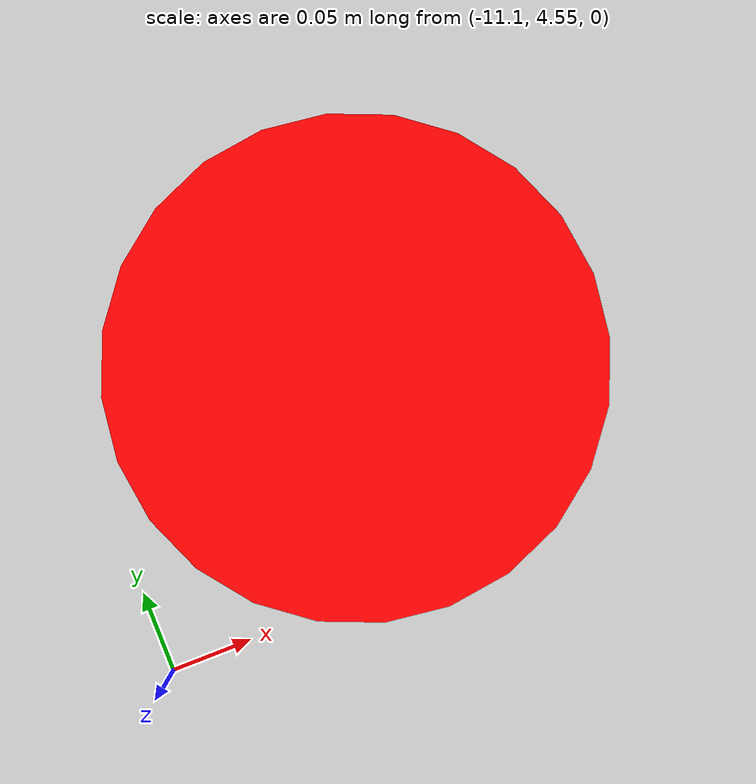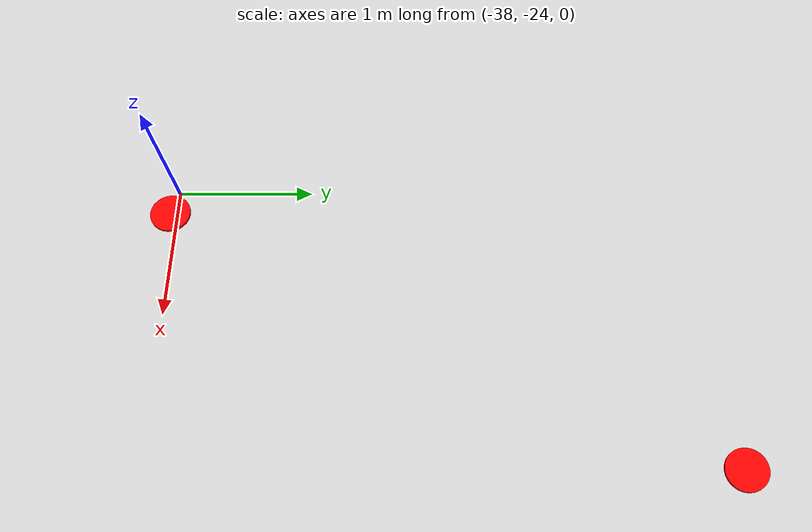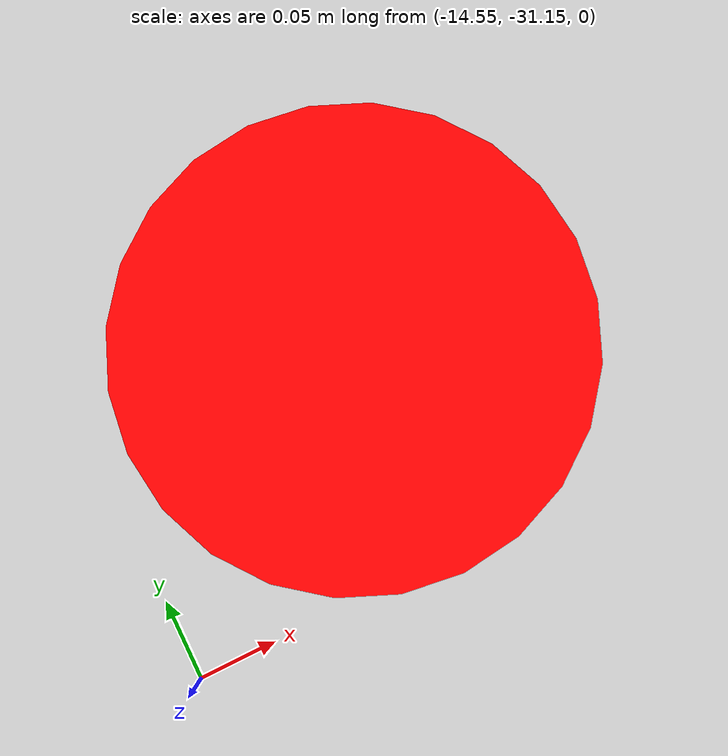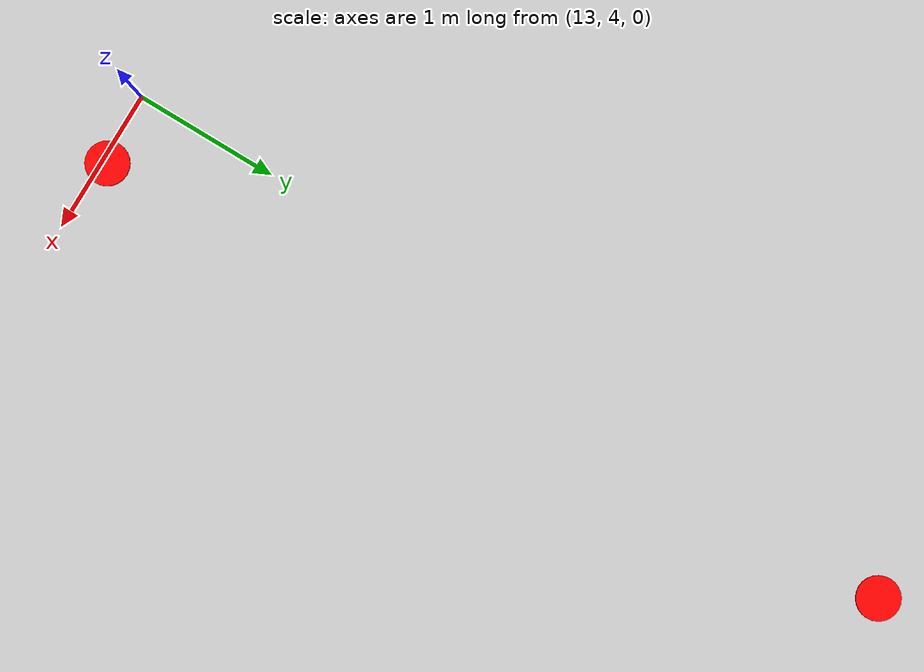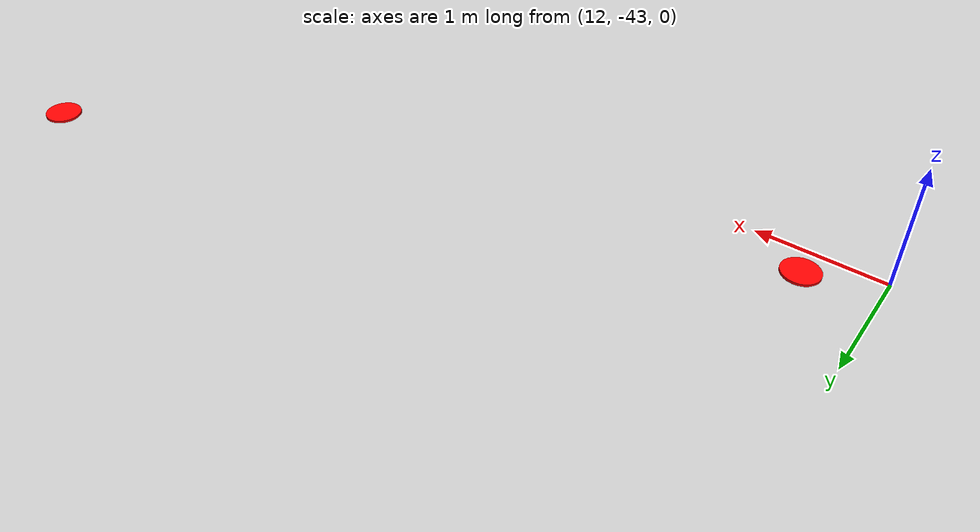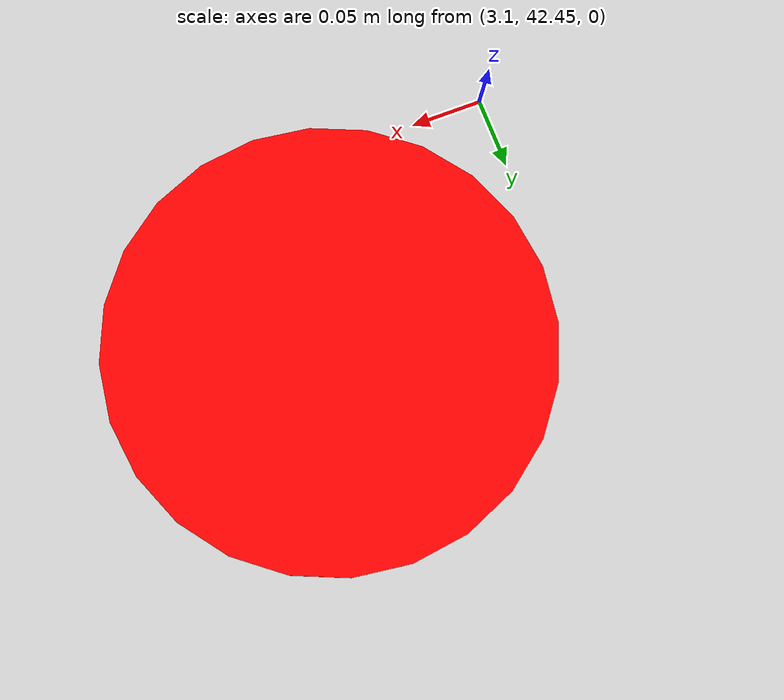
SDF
<?xml version="1.0" ?>
<sdf version="1.6">
  <world name="disc_world">

    <!-- Lighting -->
    <include>
      <uri>model://sun</uri>
    </include>

    <!-- Ground plane -->
    <include>
      <uri>model://ground_plane</uri>
    </include>

    <!-- Physics -->
    <physics type="ode">
      <real_time_update_rate>1000.0</real_time_update_rate>
      <max_step_size>0.001</max_step_size>
      <real_time_factor>1</real_time_factor>
    </physics>

    <!-- Scene -->
    <scene>
      <ambient>0.4 0.4 0.4 1</ambient>
      <background>0.7 0.7 0.7 1</background>
      <shadows>true</shadows>
    </scene>

    <!-- 25 Randomly Scattered Discs (seed=42, 100x100m area) -->

    <model name="disc_1">
      <static>true</static>
      <pose>12.55 -42.75 0.01 0 0 0</pose>
      <link name="link">
        <visual name="visual">
          <geometry>
            <cylinder>
              <radius>0.15</radius>
              <length>0.02</length>
            </cylinder>
          </geometry>
          <material>
            <ambient>1 0 0 1</ambient>
            <diffuse>1 0 0 1</diffuse>
          </material>
        </visual>
        <collision name="collision">
          <geometry>
            <cylinder>
              <radius>0.15</radius>
              <length>0.02</length>
            </cylinder>
          </geometry>
        </collision>
      </link>
    </model>

    <model name="disc_2">
      <static>true</static>
      <pose>-20.25 -24.91 0.01 0 0 0</pose>
      <link name="link">
        <visual name="visual">
          <geometry>
            <cylinder>
              <radius>0.15</radius>
              <length>0.02</length>
            </cylinder>
          </geometry>
          <material>
            <ambient>1 0 0 1</ambient>
            <diffuse>1 0 0 1</diffuse>
          </material>
        </visual>
        <collision name="collision">
          <geometry>
            <cylinder>
              <radius>0.15</radius>
              <length>0.02</length>
            </cylinder>
          </geometry>
        </collision>
      </link>
    </model>

    <model name="disc_3">
      <static>true</static>
      <pose>21.28 15.9 0.01 0 0 0</pose>
      <link name="link">
        <visual name="visual">
          <geometry>
            <cylinder>
              <radius>0.15</radius>
              <length>0.02</length>
            </cylinder>
          </geometry>
          <material>
            <ambient>1 0 0 1</ambient>
            <diffuse>1 0 0 1</diffuse>
          </material>
        </visual>
        <collision name="collision">
          <geometry>
            <cylinder>
              <radius>0.15</radius>
              <length>0.02</length>
            </cylinder>
          </geometry>
        </collision>
      </link>
    </model>

    <model name="disc_4">
      <static>true</static>
      <pose>35.3 -37.18 0.01 0 0 0</pose>
      <link name="link">
        <visual name="visual">
          <geometry>
            <cylinder>
              <radius>0.15</radius>
              <length>0.02</length>
            </cylinder>
          </geometry>
          <material>
            <ambient>1 0 0 1</ambient>
            <diffuse>1 0 0 1</diffuse>
          </material>
        </visual>
        <collision name="collision">
          <geometry>
            <cylinder>
              <radius>0.15</radius>
              <length>0.02</length>
            </cylinder>
          </geometry>
        </collision>
      </link>
    </model>

    <model name="disc_5">
      <static>true</static>
      <pose>-7.03 -42.32 0.01 0 0 0</pose>
      <link name="link">
        <visual name="visual">
          <geometry>
            <cylinder>
              <radius>0.15</radius>
              <length>0.02</length>
            </cylinder>
          </geometry>
          <material>
            <ambient>1 0 0 1</ambient>
            <diffuse>1 0 0 1</diffuse>
          </material>
        </visual>
        <collision name="collision">
          <geometry>
            <cylinder>
              <radius>0.15</radius>
              <length>0.02</length>
            </cylinder>
          </geometry>
        </collision>
      </link>
    </model>

    <model name="disc_6">
      <static>true</static>
      <pose>-25.32 0.48 0.01 0 0 0</pose>
      <link name="link">
        <visual name="visual">
          <geometry>
            <cylinder>
              <radius>0.15</radius>
              <length>0.02</length>
            </cylinder>
          </geometry>
          <material>
            <ambient>1 0 0 1</ambient>
            <diffuse>1 0 0 1</diffuse>
          </material>
        </visual>
        <collision name="collision">
          <geometry>
            <cylinder>
              <radius>0.15</radius>
              <length>0.02</length>
            </cylinder>
          </geometry>
        </collision>
      </link>
    </model>

    <model name="disc_7">
      <static>true</static>
      <pose>-42.61 -27.1 0.01 0 0 0</pose>
      <link name="link">
        <visual name="visual">
          <geometry>
            <cylinder>
              <radius>0.15</radius>
              <length>0.02</length>
            </cylinder>
          </geometry>
          <material>
            <ambient>1 0 0 1</ambient>
            <diffuse>1 0 0 1</diffuse>
          </material>
        </visual>
        <collision name="collision">
          <geometry>
            <cylinder>
              <radius>0.15</radius>
              <length>0.02</length>
            </cylinder>
          </geometry>
        </collision>
      </link>
    </model>

    <model name="disc_8">
      <static>true</static>
      <pose>13.49 4.04 0.01 0 0 0</pose>
      <link name="link">
        <visual name="visual">
          <geometry>
            <cylinder>
              <radius>0.15</radius>
              <length>0.02</length>
            </cylinder>
          </geometry>
          <material>
            <ambient>1 0 0 1</ambient>
            <diffuse>1 0 0 1</diffuse>
          </material>
        </visual>
        <collision name="collision">
          <geometry>
            <cylinder>
              <radius>0.15</radius>
              <length>0.02</length>
            </cylinder>
          </geometry>
        </collision>
      </link>
    </model>

    <model name="disc_9">
      <static>true</static>
      <pose>-25.16 8.03 0.01 0 0 0</pose>
      <link name="link">
        <visual name="visual">
          <geometry>
            <cylinder>
              <radius>0.15</radius>
              <length>0.02</length>
            </cylinder>
          </geometry>
          <material>
            <ambient>1 0 0 1</ambient>
            <diffuse>1 0 0 1</diffuse>
          </material>
        </visual>
        <collision name="collision">
          <geometry>
            <cylinder>
              <radius>0.15</radius>
              <length>0.02</length>
            </cylinder>
          </geometry>
        </collision>
      </link>
    </model>

    <model name="disc_10">
      <static>true</static>
      <pose>27.85 -44.42 0.01 0 0 0</pose>
      <link name="link">
        <visual name="visual">
          <geometry>
            <cylinder>
              <radius>0.15</radius>
              <length>0.02</length>
            </cylinder>
          </geometry>
          <material>
            <ambient>1 0 0 1</ambient>
            <diffuse>1 0 0 1</diffuse>
          </material>
        </visual>
        <collision name="collision">
          <geometry>
            <cylinder>
              <radius>0.15</radius>
              <length>0.02</length>
            </cylinder>
          </geometry>
        </collision>
      </link>
    </model>

    <model name="disc_11">
      <static>true</static>
      <pose>27.52 17.83 0.01 0 0 0</pose>
      <link name="link">
        <visual name="visual">
          <geometry>
            <cylinder>
              <radius>0.15</radius>
              <length>0.02</length>
            </cylinder>
          </geometry>
          <material>
            <ambient>1 0 0 1</ambient>
            <diffuse>1 0 0 1</diffuse>
          </material>
        </visual>
        <collision name="collision">
          <geometry>
            <cylinder>
              <radius>0.15</radius>
              <length>0.02</length>
            </cylinder>
          </geometry>
        </collision>
      </link>
    </model>

    <model name="disc_12">
      <static>true</static>
      <pose>-14.38 -31.01 0.01 0 0 0</pose>
      <link name="link">
        <visual name="visual">
          <geometry>
            <cylinder>
              <radius>0.15</radius>
              <length>0.02</length>
            </cylinder>
          </geometry>
          <material>
            <ambient>1 0 0 1</ambient>
            <diffuse>1 0 0 1</diffuse>
          </material>
        </visual>
        <collision name="collision">
          <geometry>
            <cylinder>
              <radius>0.15</radius>
              <length>0.02</length>
            </cylinder>
          </geometry>
        </collision>
      </link>
    </model>

    <model name="disc_13">
      <static>true</static>
      <pose>41.15 -14.71 0.01 0 0 0</pose>
      <link name="link">
        <visual name="visual">
          <geometry>
            <cylinder>
              <radius>0.15</radius>
              <length>0.02</length>
            </cylinder>
          </geometry>
          <material>
            <ambient>1 0 0 1</ambient>
            <diffuse>1 0 0 1</diffuse>
          </material>
        </visual>
        <collision name="collision">
          <geometry>
            <cylinder>
              <radius>0.15</radius>
              <length>0.02</length>
            </cylinder>
          </geometry>
        </collision>
      </link>
    </model>

    <model name="disc_14">
      <static>true</static>
      <pose>-36.65 -36.3 0.01 0 0 0</pose>
      <link name="link">
        <visual name="visual">
          <geometry>
            <cylinder>
              <radius>0.15</radius>
              <length>0.02</length>
            </cylinder>
          </geometry>
          <material>
            <ambient>1 0 0 1</ambient>
            <diffuse>1 0 0 1</diffuse>
          </material>
        </visual>
        <collision name="collision">
          <geometry>
            <cylinder>
              <radius>0.15</radius>
              <length>0.02</length>
            </cylinder>
          </geometry>
        </collision>
      </link>
    </model>

    <model name="disc_15">
      <static>true</static>
      <pose>31.27 9.34 0.01 0 0 0</pose>
      <link name="link">
        <visual name="visual">
          <geometry>
            <cylinder>
              <radius>0.15</radius>
              <length>0.02</length>
            </cylinder>
          </geometry>
          <material>
            <ambient>1 0 0 1</ambient>
            <diffuse>1 0 0 1</diffuse>
          </material>
        </visual>
        <collision name="collision">
          <geometry>
            <cylinder>
              <radius>0.15</radius>
              <length>0.02</length>
            </cylinder>
          </geometry>
        </collision>
      </link>
    </model>

    <model name="disc_16">
      <static>true</static>
      <pose>3.26 42.58 0.01 0 0 0</pose>
      <link name="link">
        <visual name="visual">
          <geometry>
            <cylinder>
              <radius>0.15</radius>
              <length>0.02</length>
            </cylinder>
          </geometry>
          <material>
            <ambient>1 0 0 1</ambient>
            <diffuse>1 0 0 1</diffuse>
          </material>
        </visual>
        <collision name="collision">
          <geometry>
            <cylinder>
              <radius>0.15</radius>
              <length>0.02</length>
            </cylinder>
          </geometry>
        </collision>
      </link>
    </model>

    <model name="disc_17">
      <static>true</static>
      <pose>-10.93 4.68 0.01 0 0 0</pose>
      <link name="link">
        <visual name="visual">
          <geometry>
            <cylinder>
              <radius>0.15</radius>
              <length>0.02</length>
            </cylinder>
          </geometry>
          <material>
            <ambient>1 0 0 1</ambient>
            <diffuse>1 0 0 1</diffuse>
          </material>
        </visual>
        <collision name="collision">
          <geometry>
            <cylinder>
              <radius>0.15</radius>
              <length>0.02</length>
            </cylinder>
          </geometry>
        </collision>
      </link>
    </model>

    <model name="disc_18">
      <static>true</static>
      <pose>18.41 -40.88 0.01 0 0 0</pose>
      <link name="link">
        <visual name="visual">
          <geometry>
            <cylinder>
              <radius>0.15</radius>
              <length>0.02</length>
            </cylinder>
          </geometry>
          <material>
            <ambient>1 0 0 1</ambient>
            <diffuse>1 0 0 1</diffuse>
          </material>
        </visual>
        <collision name="collision">
          <geometry>
            <cylinder>
              <radius>0.15</radius>
              <length>0.02</length>
            </cylinder>
          </geometry>
        </collision>
      </link>
    </model>

    <model name="disc_19">
      <static>true</static>
      <pose>-24.49 -18.96 0.01 0 0 0</pose>
      <link name="link">
        <visual name="visual">
          <geometry>
            <cylinder>
              <radius>0.15</radius>
              <length>0.02</length>
            </cylinder>
          </geometry>
          <material>
            <ambient>1 0 0 1</ambient>
            <diffuse>1 0 0 1</diffuse>
          </material>
        </visual>
        <collision name="collision">
          <geometry>
            <cylinder>
              <radius>0.15</radius>
              <length>0.02</length>
            </cylinder>
          </geometry>
        </collision>
      </link>
    </model>

    <model name="disc_20">
      <static>true</static>
      <pose>-37.82 -24.05 0.01 0 0 0</pose>
      <link name="link">
        <visual name="visual">
          <geometry>
            <cylinder>
              <radius>0.15</radius>
              <length>0.02</length>
            </cylinder>
          </geometry>
          <material>
            <ambient>1 0 0 1</ambient>
            <diffuse>1 0 0 1</diffuse>
          </material>
        </visual>
        <collision name="collision">
          <geometry>
            <cylinder>
              <radius>0.15</radius>
              <length>0.02</length>
            </cylinder>
          </geometry>
        </collision>
      </link>
    </model>

    <model name="disc_21">
      <static>true</static>
      <pose>-35.91 -19.98 0.01 0 0 0</pose>
      <link name="link">
        <visual name="visual">
          <geometry>
            <cylinder>
              <radius>0.15</radius>
              <length>0.02</length>
            </cylinder>
          </geometry>
          <material>
            <ambient>1 0 0 1</ambient>
            <diffuse>1 0 0 1</diffuse>
          </material>
        </visual>
        <collision name="collision">
          <geometry>
            <cylinder>
              <radius>0.15</radius>
              <length>0.02</length>
            </cylinder>
          </geometry>
        </collision>
      </link>
    </model>

    <model name="disc_22">
      <static>true</static>
      <pose>12.21 -12.17 0.01 0 0 0</pose>
      <link name="link">
        <visual name="visual">
          <geometry>
            <cylinder>
              <radius>0.15</radius>
              <length>0.02</length>
            </cylinder>
          </geometry>
          <material>
            <ambient>1 0 0 1</ambient>
            <diffuse>1 0 0 1</diffuse>
          </material>
        </visual>
        <collision name="collision">
          <geometry>
            <cylinder>
              <radius>0.15</radius>
              <length>0.02</length>
            </cylinder>
          </geometry>
        </collision>
      </link>
    </model>

    <model name="disc_23">
      <static>true</static>
      <pose>-11.68 -26.14 0.01 0 0 0</pose>
      <link name="link">
        <visual name="visual">
          <geometry>
            <cylinder>
              <radius>0.15</radius>
              <length>0.02</length>
            </cylinder>
          </geometry>
          <material>
            <ambient>1 0 0 1</ambient>
            <diffuse>1 0 0 1</diffuse>
          </material>
        </visual>
        <collision name="collision">
          <geometry>
            <cylinder>
              <radius>0.15</radius>
              <length>0.02</length>
            </cylinder>
          </geometry>
        </collision>
      </link>
    </model>

    <model name="disc_24">
      <static>true</static>
      <pose>-20.97 39.3 0.01 0 0 0</pose>
      <link name="link">
        <visual name="visual">
          <geometry>
            <cylinder>
              <radius>0.15</radius>
              <length>0.02</length>
            </cylinder>
          </geometry>
          <material>
            <ambient>1 0 0 1</ambient>
            <diffuse>1 0 0 1</diffuse>
          </material>
        </visual>
        <collision name="collision">
          <geometry>
            <cylinder>
              <radius>0.15</radius>
              <length>0.02</length>
            </cylinder>
          </geometry>
        </collision>
      </link>
    </model>

    <model name="disc_25">
      <static>true</static>
      <pose>13.32 9.82 0.01 0 0 0</pose>
      <link name="link">
        <visual name="visual">
          <geometry>
            <cylinder>
              <radius>0.15</radius>
              <length>0.02</length>
            </cylinder>
          </geometry>
          <material>
            <ambient>1 0 0 1</ambient>
            <diffuse>1 0 0 1</diffuse>
          </material>
        </visual>
        <collision name="collision">
          <geometry>
            <cylinder>
              <radius>0.15</radius>
              <length>0.02</length>
            </cylinder>
          </geometry>
        </collision>
      </link>
    </model>

  </world>
</sdf>
